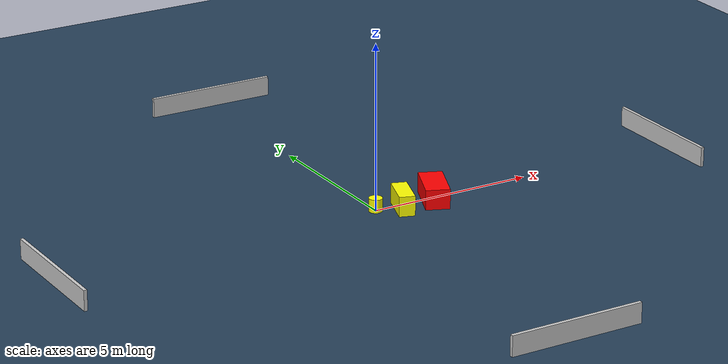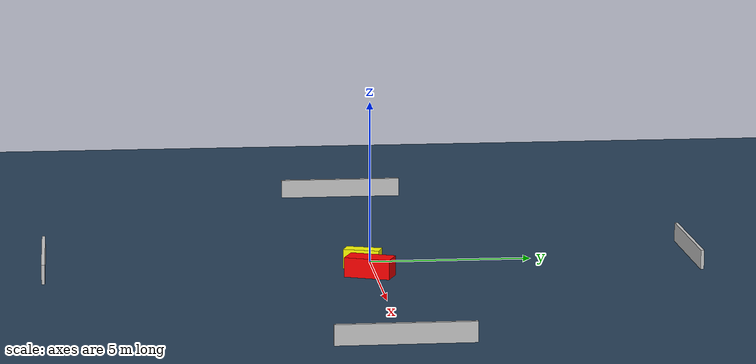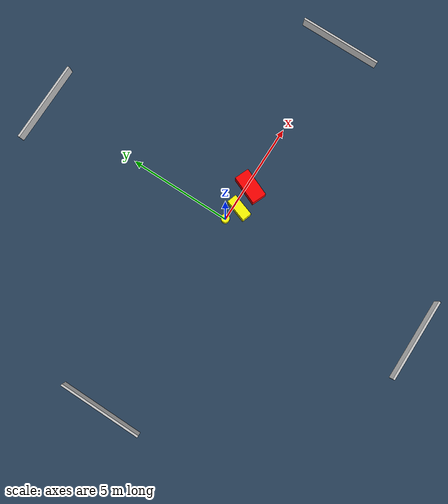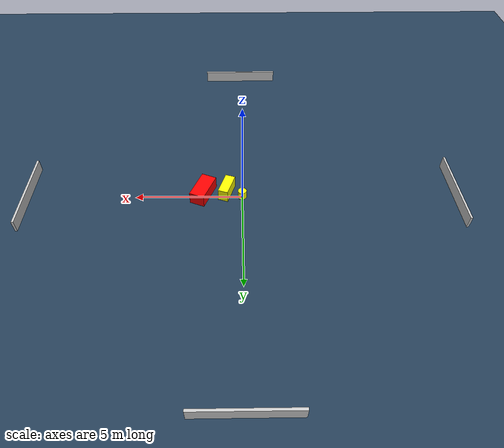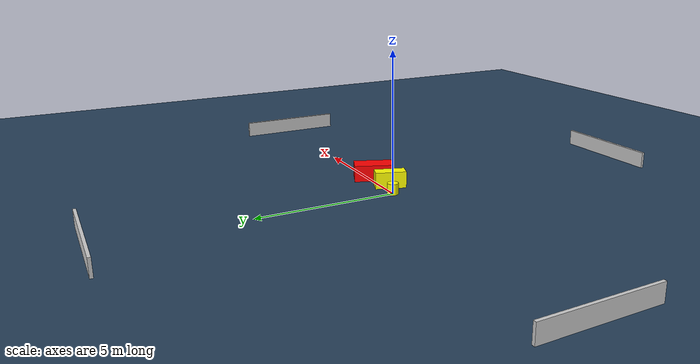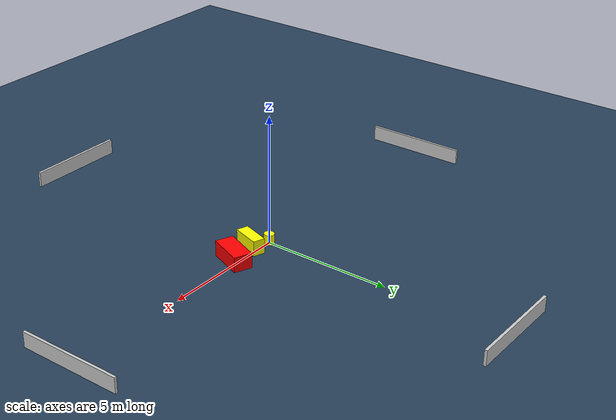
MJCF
<?xml version="1.0" ?>
<mujoco model="generated_environment">
  <option timestep="0.01" integrator="RK4" cone="elliptic"/>
  <default>
    <geom density="1"/>
  </default>
  <asset>
    <texture builtin="gradient" height="3072" name="skybox" rgb1="0.3 0.5 0.7" rgb2="0 0 0" type="skybox" width="512"/>
    <texture builtin="checker" height="300" name="groundplane" rgb1="0.2 0.3 0.4" rgb2="0.1 0.2 0.3" type="2d" width="300"/>
    <material name="groundplane" reflectance="0.2" texrepeat="5 5" texture="groundplane"/>
  </asset>
  <worldbody>
    <light dir="0 0 -1" directional="true" pos="0 0 1.5"/>
    <geom condim="3" friction="0.5 0.005 0.001" material="groundplane" name="floor" pos="0 0 0" size="0 0 0.05" type="plane"/>
    <body name="walls">
      <geom name="wall_1" condim="4" pos="-10.0 0.0 0.3" rgba="0.800000011920929 0.800000011920929 0.800000011920929 1.0" size="0.05 2.0 0.3" type="box"/>
      <geom name="wall_2" condim="4" pos="10.0 0.0 0.3" rgba="0.800000011920929 0.800000011920929 0.800000011920929 1.0" size="0.05 2.0 0.3" type="box"/>
      <geom name="wall_3" condim="4" pos="0.0 -10.0 0.3" rgba="0.800000011920929 0.800000011920929 0.800000011920929 1.0" size="2.0 0.05 0.3" type="box"/>
      <geom name="wall_4" condim="4" pos="0.0 10.0 0.3" rgba="0.800000011920929 0.800000011920929 0.800000011920929 1.0" size="2.0 0.05 0.3" type="box"/>
    </body>
    <body name="robot">
      <joint name="joint_x" type="slide" pos="0 0 0" axis="1 0 0"/>
      <joint name="joint_y" type="slide" pos="0 0 0" axis="0 1 0"/>
      <geom name="robot" type="cylinder" pos="0.0 0.0 0.2" size="0.2 0.2 0.0" mass="5.0" friction="1.0 0.005 0.0001" condim="4" rgba="1.0 1.0 0.0 1.0"/>
    </body>
    <body name="obstacle_1_movable">
      <geom name="obstacle_1_movable" condim="4" pos="0.7293385535586794 -0.28632699268297246 0.3" euler="0 0 71.48305501595291" friction="0.0 0.005 0.001" rgba="1.0 1.0 0.0 1.0" size="0.553555436308666 0.2344994365071662 0.3" type="box" mass="0.1"/>
      <joint type="free"/>
    </body>
    <body name="obstacle_2_static">
      <geom name="obstacle_2_static" condim="4" pos="1.8349216653281732 -0.17534886474444827 0.3" euler="0 0 157.43966998384425" friction="0.0 0.005 0.001" rgba="1.0 0.0 0.0 1.0" size="0.35602951033033936 0.70547162672764 0.3" type="box"/>
    </body>
  </worldbody>
  <actuator>
    <motor name="actuator_x" joint="joint_x" gear="1" ctrlrange="-1 1"/>
    <motor name="actuator_y" joint="joint_y" gear="1" ctrlrange="-1 1"/>
  </actuator>
</mujoco>
